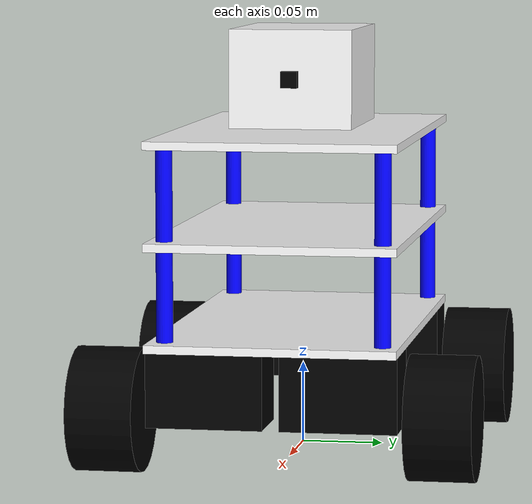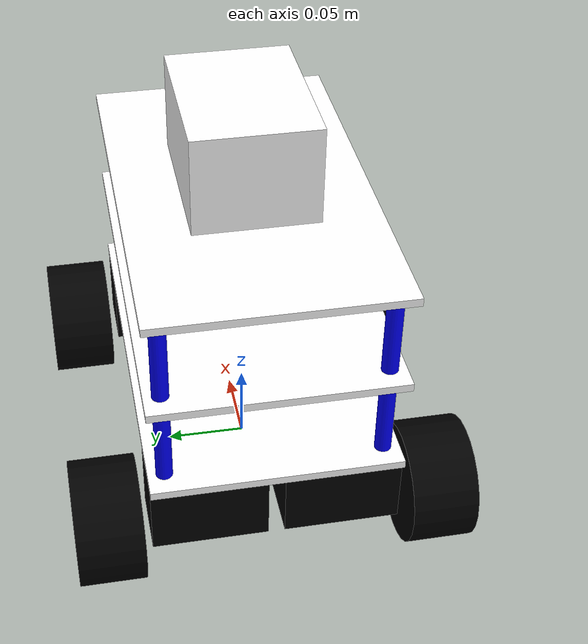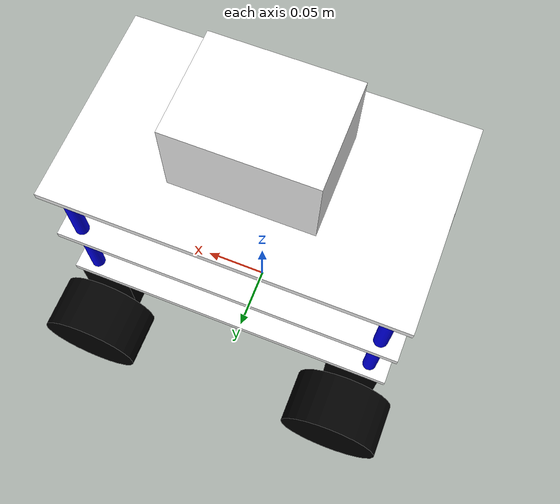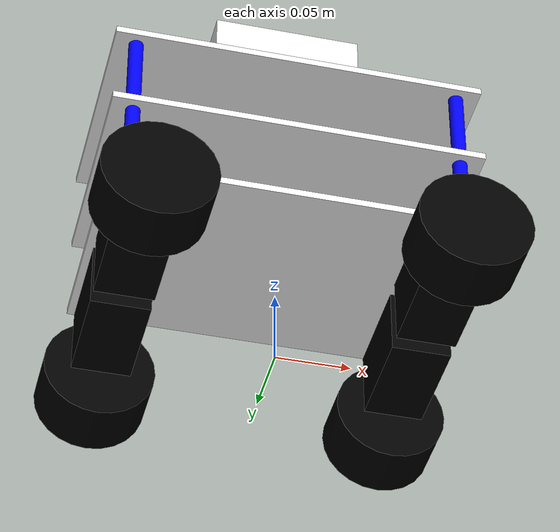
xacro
<?xml version="1.0"?>
<robot name="mecbot" xmlns:xacro="http://wiki.ros.org/xacro">

  <xacro:arg name="robot_type" default="omni"/>

  <xacro:property name="type" value="$(arg robot_type)" />

  <xacro:include filename="$(find mecbot_description)/urdf/base.xacro"/>
  <xacro:include filename="$(find mecbot_description)/urdf/pillar.xacro"/>
  <xacro:include filename="$(find mecbot_description)/urdf/motor.xacro"/>
  <xacro:include filename="$(find mecbot_description)/urdf/lidar.xacro"/>
  <xacro:include filename="$(find mecbot_description)/urdf/wheel.xacro"/>
  <xacro:include filename="$(find mecbot_description)/urdf/camera.xacro"/>
  <xacro:include filename="$(find mecbot_description)/urdf/color.xacro"/>

  <link name="world_link" />

  <xacro:robot_base parent="world_link" child="first_base_link" xyz="0 0 0.075" rpy="0 0 0" material="${white_material}" />
  <xacro:robot_base parent="first_base_link" child="second_base_link" xyz="0 0 0.06" rpy="0 0 0" material="${white_material}" />
  <xacro:robot_base parent="second_base_link" child="third_base_link" xyz="0 0 0.06" rpy="0 0 0" material="${white_material}" />

  <xacro:robot_pillar parent="first_base_link" child="first_front_left_pillar_link" xyz="0.11 0.065 0.03" rpy="0 0 0" material="${blue_material}" />
  <xacro:robot_pillar parent="first_base_link" child="first_front_right_pillar_link" xyz="0.11 -0.065 0.03" rpy="0 0 0" material="${blue_material}" />
  <xacro:robot_pillar parent="first_base_link" child="first_back_left_pillar_link" xyz="-0.11 0.065 0.03" rpy="0 0 0" material="${blue_material}" />
  <xacro:robot_pillar parent="first_base_link" child="first_back_right_pillar_link" xyz="-0.11 -0.065 0.03" rpy="0 0 0" material="${blue_material}" />

  <xacro:robot_pillar parent="second_base_link" child="second_front_left_pillar_link" xyz="0.11 0.065 0.03" rpy="0 0 0" material="${blue_material}" />
  <xacro:robot_pillar parent="second_base_link" child="second_front_right_pillar_link" xyz="0.11 -0.065 0.03" rpy="0 0 0" material="${blue_material}" />
  <xacro:robot_pillar parent="second_base_link" child="second_back_left_pillar_link" xyz="-0.11 0.065 0.03" rpy="0 0 0" material="${blue_material}" />
  <xacro:robot_pillar parent="second_base_link" child="second_back_right_pillar_link" xyz="-0.11 -0.065 0.03" rpy="0 0 0" material="${blue_material}" />

  <xacro:robot_motor parent="first_base_link" child="front_left_motor_link" xyz="0.10 0.040 -0.025" rpy="0 0 0" material="${black_material}" />
  <xacro:robot_motor parent="first_base_link" child="front_right_motor_link" xyz="0.10 -0.040 -0.025" rpy="0 0 0" material="${black_material}" />
  <xacro:robot_motor parent="first_base_link" child="back_left_motor_link" xyz="-0.10 0.040 -0.025" rpy="0 0 0" material="${black_material}" />
  <xacro:robot_motor parent="first_base_link" child="back_right_motor_link" xyz="-0.10 -0.040 -0.025" rpy="0 0 0" material="${black_material}" />

  <xacro:wheel parent="front_left_motor_link" child="front_left_wheel_link" xyz="0.0 0.060 -0.015" rpy="1.57 0 0" robot_type="$(arg robot_type)" material="${black_material}" />
  <xacro:wheel parent="front_right_motor_link" child="front_right_wheel_link" xyz="0.0 -0.060 -0.015" rpy="1.57 0 0" robot_type="$(arg robot_type)" material="${black_material}" />
  <xacro:wheel parent="back_left_motor_link" child="back_left_wheel_link" xyz="0.0 0.060 -0.015" rpy="1.57 0 0" robot_type="$(arg robot_type)" material="${black_material}" />
  <xacro:wheel parent="back_right_motor_link" child="back_right_wheel_link" xyz="0.0 -0.060 -0.015" rpy="1.57 0 0" robot_type="$(arg robot_type)" material="${black_material}" />

  <xacro:lidar parent="third_base_link" child="lidar_link" xyz="0.0 0.0 0.035" rpy="0 0 0" material= "${white_material}" />

  <!-- Добавляем камеру -->
  <xacro:camera parent="third_base_link" child="camera_link" xyz="0.05 0.0 0.035" rpy="0 0 0" material="${black_material}"/>

  <xacro:if value="${type == 'omni'}">
    <gazebo>
      <plugin name="object_controller" filename="libgazebo_ros_planar_move.so">
        <ros>
          <argument>odom:=odom</argument>
        </ros>
        <command_topic>cmd_vel</command_topic>
        <odometry_topic>odom</odometry_topic>
        <odometry_frame>odom</odometry_frame>
        <odometry_rate>20.0</odometry_rate>
        <robot_base_frame>world_link</robot_base_frame>
        <publish_odom>true</publish_odom>
        <publish_odom_tf>true</publish_odom_tf>
      </plugin>
    </gazebo>
  </xacro:if>

  <xacro:if value="${type == 'diff'}">
   <gazebo>
      <plugin name="skid_steer_drive" filename="libgazebo_ros_diff_drive.so">

         <num_wheel_pairs>2</num_wheel_pairs>

        <left_joint>front_left_motor_link_to_front_left_wheel_link_joint</left_joint>
        <right_joint>front_right_motor_link_to_front_right_wheel_link_joint</right_joint>
        <left_joint>back_left_motor_link_to_back_left_wheel_link_joint</left_joint>
        <right_joint>back_right_motor_link_to_back_right_wheel_link_joint</right_joint>

        <wheel_separation>0.215</wheel_separation>
        <wheel_separation>0.215</wheel_separation>

        <wheel_diameter>0.035</wheel_diameter>
        <wheel_diameter>0.035</wheel_diameter>

        <max_wheel_torque>50</max_wheel_torque>
        <max_wheel_acceleration>10.0</max_wheel_acceleration>

        <odometry_frame>odom</odometry_frame>
        <robot_base_frame>world_link</robot_base_frame>

        <publish_odom>true</publish_odom>
        <publish_odom_tf>true</publish_odom_tf>
        <publish_wheel_tf>true</publish_wheel_tf>
      </plugin>
     </gazebo>
  </xacro:if>

</robot>

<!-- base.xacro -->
<robot xmlns:xacro="http://wiki.ros.org/xacro">

  <xacro:macro name="robot_base" params="parent child xyz rpy material">

    <link name="${child}">
      <visual>
        <geometry>
          <box size="0.25 0.15 0.005" />
        </geometry>
        <material name="${material}"/>
      </visual>
      <collision>
        <geometry>
          <box size="0.25 0.15 0.005" />
        </geometry>
      </collision>
      <inertial>
        <mass value="0.5" />
        <inertia ixx="0.015" ixy="0" ixz="0" iyy="0.0375" iyz="0.0" izz="0.0275" />
      </inertial>
    </link>

    <joint name="${parent}_to_${child}_joint" type="fixed">
      <origin xyz="${xyz}" rpy="${rpy}" />
      <parent link="${parent}" />
      <child link="${child}" />
    </joint>

        <!-- Gazebo material definition -->
    <gazebo reference="${child}">
      <material>${material}</material>
    </gazebo>

  </xacro:macro>
</robot>

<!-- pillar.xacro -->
<robot xmlns:xacro="http://wiki.ros.org/xacro">

  <xacro:macro name="robot_pillar" params="parent child xyz rpy material">

    <link name="${child}">
      <visual>
        <geometry>
          <cylinder radius="0.005" length="0.06" />
        </geometry>
        <material name="${material}"/>
      </visual>
      <collision>
        <geometry>
          <cylinder radius="0.005" length="0.06" />
        </geometry>
      </collision>
      <inertial>
        <mass value="0.1" />
        <inertia ixx="0.015" ixy="0" ixz="0" iyy="0.0375" iyz="0.0" izz="0.0275" />
      </inertial>
    </link>

    <joint name="${parent}_to_${child}_joint" type="fixed">
      <origin xyz="${xyz}" rpy="${rpy}" />
      <parent link="${parent}" />
      <child link="${child}" />
    </joint>

        <!-- Gazebo material definition -->
    <gazebo reference="${child}">
      <material>${material}</material>
    </gazebo>

  </xacro:macro>

</robot>

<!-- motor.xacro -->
<robot xmlns:xacro="http://wiki.ros.org/xacro">

  <xacro:macro name="robot_motor" params="parent child xyz rpy material">

    <link name="${child}">
      <visual>
        <geometry>
          <box size="0.04 0.07 0.045" />
        </geometry>
        <material name="${material}"/>
      </visual>
      <collision>
        <geometry>
          <box size="0.04 0.07 0.045" />
        </geometry>
      </collision>
      <inertial>
        <mass value="1.5" />
        <inertia ixx="0.015" ixy="0" ixz="0" iyy="0.0375" iyz="0.0" izz="0.0275" />
      </inertial>
    </link>

    <joint name="${parent}_to_${child}_joint" type="fixed">
      <origin xyz="${xyz}" rpy="${rpy}" />
      <parent link="${parent}" />
      <child link="${child}" />
    </joint>

        <!-- Gazebo material definition -->
    <gazebo reference="${child}">
      <material>${material}</material>
    </gazebo>

  </xacro:macro>

</robot>

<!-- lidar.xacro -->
<robot xmlns:xacro="http://wiki.ros.org/xacro">

  <xacro:macro name="lidar" params="parent child xyz rpy material">

    <link name="${child}">
      <visual>
        <geometry>
          <box size="0.10 0.075 0.060" />
        </geometry>
        <material name="${material}"/>
      </visual>
      <collision>
        <geometry>
          <box size="0.10 0.075 0.060" />
        </geometry>
      </collision>
      <inertial>
        <mass value="0.01" />
        <inertia ixx="0.015" ixy="0" ixz="0" iyy="0.0375" iyz="0.0" izz="0.0275" />
      </inertial>
    </link>

    <joint name="${parent}_to_${child}_joint" type="fixed">
      <origin xyz="${xyz}" rpy="${rpy}" />
      <parent link="${parent}" />
      <child link="${child}" />
    </joint>

    <gazebo reference="${child}">
      <sensor name="lidar" type="ray">
        <always_on>true</always_on>
        <visualize>true</visualize>
        <update_rate>5</update_rate>
        <ray>
          <scan>
            <horizontal>
              <samples>360</samples>
              <resolution>1.000000</resolution>
              <min_angle>0.000000</min_angle>
              <max_angle>6.280000</max_angle>
            </horizontal>
          </scan>
          <range>
            <min>0.120000</min>
            <max>3.5</max>
            <resolution>0.015000</resolution>
          </range>
          <noise>
            <type>gaussian</type>
            <mean>0.0</mean>
            <stddev>0.01</stddev>
          </noise>
        </ray>
        <plugin name="scan" filename="libgazebo_ros_ray_sensor.so">
          <ros>
            <remapping>~/out:=scan</remapping>
          </ros>
          <output_type>sensor_msgs/LaserScan</output_type>
          <frame_name>${child}</frame_name>
        </plugin>
      </sensor>
      <material>${material}</material>
    </gazebo>

  </xacro:macro>

</robot>

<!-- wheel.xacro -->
<robot xmlns:xacro="http://wiki.ros.org/xacro">

  <xacro:macro name="wheel" params="parent child xyz rpy robot_type material">

    <link name="${child}">
      <visual>
        <geometry>
          <cylinder radius="0.0375" length="0.04"/>
        </geometry>
        <material name="${material}"/>
      </visual>
      <collision>
        <geometry>
          <cylinder radius="0.0375" length="0.04"/>
        </geometry>
      </collision>
      <inertial>
        <mass value="0.1" />
        <inertia ixx="0.015" ixy="0" ixz="0" iyy="0.0375" iyz="0.0" izz="0.0275" />
      </inertial>
    </link>

    <xacro:if value="${robot_type == 'omni'}">
      <joint name="${parent}_to_${child}_joint" type="fixed">
        <axis xyz="0.0 0.0 1"/>
        <origin xyz="${xyz}" rpy="${rpy}" />
        <parent link="${parent}" />
        <child link="${child}" />
      </joint>
    </xacro:if>

    <xacro:if value="${robot_type == 'diff'}">
      <joint name="${parent}_to_${child}_joint" type="continuous">
        <axis xyz="0.0 0.0 1"/>
        <origin xyz="${xyz}" rpy="${rpy}" />
        <parent link="${parent}" />
        <child link="${child}" />
      </joint>
    </xacro:if>

        <!-- Gazebo material definition -->
    <gazebo reference="${child}">
      <material>${material}</material>
    </gazebo>

  </xacro:macro>

</robot>

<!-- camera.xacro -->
<robot xmlns:xacro="http://wiki.ros.org/xacro">

  <xacro:macro name="camera" params="parent child xyz rpy material">

    <link name="${child}">
      <visual>
        <geometry>
          <box size="0.01 0.01 0.01"/>
        </geometry>
        <material name="${material}"/>
      </visual>
      <collision>
        <geometry>
          <box size="0.01 0.01 0.01"/>
        </geometry>
      </collision>
      <inertial>
        <mass value="0.01"/>
        <inertia ixx="0.0001" ixy="0" ixz="0" iyy="0.0001" iyz="0" izz="0.0001"/>
      </inertial>
    </link>

    <joint name="${parent}_to_${child}_joint" type="fixed">
      <origin xyz="${xyz}" rpy="${rpy}"/>
      <parent link="${parent}"/>
      <child link="${child}"/>
    </joint>

    <gazebo reference="${child}">
      <sensor name="camera" type="camera">
        <camera>
          <horizontal_fov>1.047</horizontal_fov>
          <image>
            <width>640</width>
            <height>480</height>
            <format>R8G8B8</format>
          </image>
          <clip>
            <near>0.05</near>
            <far>300</far>
          </clip>
        </camera>
        <plugin name="camera_controller" filename="libgazebo_ros_camera.so">
          <alwaysOn>true</alwaysOn>
          <updateRate>30.0</updateRate>
          <cameraName>camera</cameraName>
          <imageTopicName>image_raw</imageTopicName>
          <cameraInfoTopicName>camera_info</cameraInfoTopicName>
          <frameName>${child}</frameName>
          <hackBaseline>0.07</hackBaseline>
          <distortionK1>0.0</distortionK1>
          <distortionK2>0.0</distortionK2>
          <distortionK3>0.0</distortionK3>
          <distortionT1>0.0</distortionT1>
          <distortionT2>0.0</distortionT2>
        </plugin>
      </sensor>
      <material>${material}</material>
    </gazebo>

  </xacro:macro>
</robot>

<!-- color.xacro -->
<!-- color.xacro -->
<robot xmlns:xacro="http://wiki.ros.org/xacro">

  <!-- Define colors -->
  <xacro:property name="black_material" value="Gazebo/Black"/>
  <xacro:property name="white_material" value="Gazebo/White"/>
  <xacro:property name="blue_material" value="Gazebo/Blue"/>

  <!-- Define materials -->
  <material name="${black_material}">
    <color rgba="0.0 0.0 0.0 1.0"/>
  </material>

  <material name="${white_material}">
    <color rgba="1.0 1.0 1.0 1.0"/>
  </material>

  <material name="${blue_material}">
    <color rgba="0.0 0.0 1.0 1.0"/>
  </material>

  <!-- Gazebo materials -->
  <gazebo reference="world_link">
    <material>${black_material}</material>
  </gazebo>

  <gazebo reference="first_base_link">
    <material>${white_material}</material>
  </gazebo>

  <gazebo reference="second_base_link">
    <material>${white_material}</material>
  </gazebo>

  <gazebo reference="third_base_link">
    <material>${white_material}</material>
  </gazebo>

  <gazebo reference="first_front_left_pillar_link">
    <material>${blue_material}</material>
  </gazebo>

  <gazebo reference="first_front_right_pillar_link">
    <material>${blue_material}</material>
  </gazebo>

  <gazebo reference="first_back_left_pillar_link">
    <material>${blue_material}</material>
  </gazebo>

  <gazebo reference="first_back_right_pillar_link">
    <material>${blue_material}</material>
  </gazebo>

  <gazebo reference="second_front_left_pillar_link">
    <material>${blue_material}</material>
  </gazebo>

  <gazebo reference="second_front_right_pillar_link">
    <material>${blue_material}</material>
  </gazebo>

  <gazebo reference="second_back_left_pillar_link">
    <material>${blue_material}</material>
  </gazebo>

  <gazebo reference="second_back_right_pillar_link">
    <material>${blue_material}</material>
  </gazebo>

  <gazebo reference="front_left_motor_link">
    <material>${black_material}</material>
  </gazebo>

  <gazebo reference="front_right_motor_link">
    <material>${black_material}</material>
  </gazebo>

  <gazebo reference="back_left_motor_link">
    <material>${black_material}</material>
  </gazebo>

  <gazebo reference="back_right_motor_link">
    <material>${black_material}</material>
  </gazebo>

  <gazebo reference="front_left_wheel_link">
    <material>${black_material}</material>
  </gazebo>

  <gazebo reference="front_right_wheel_link">
    <material>${black_material}</material>
  </gazebo>

  <gazebo reference="back_left_wheel_link">
    <material>${black_material}</material>
  </gazebo>

  <gazebo reference="back_right_wheel_link">
    <material>${black_material}</material>
  </gazebo>

</robot>
